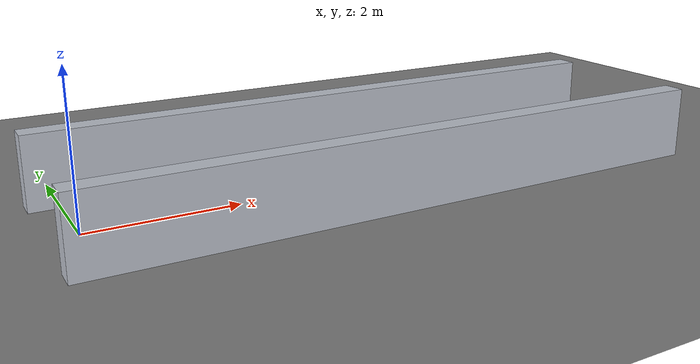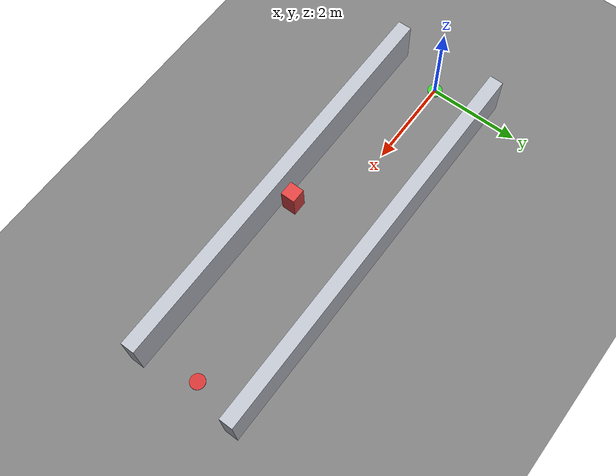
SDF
<?xml version="1.0"?>
<sdf version="1.8">
  <world name="baseline_dynamic_crossing">
    <physics name="1ms" type="ignored">
      <max_step_size>0.001</max_step_size>
      <real_time_factor>1.0</real_time_factor>
    </physics>
    <plugin filename="gz-sim-physics-system" name="gz::sim::systems::Physics"/>
    <plugin filename="gz-sim-sensors-system" name="gz::sim::systems::Sensors">
      <render_engine>ogre2</render_engine>
    </plugin>
    <plugin filename="gz-sim-user-commands-system" name="gz::sim::systems::UserCommands"/>
    <plugin filename="gz-sim-scene-broadcaster-system" name="gz::sim::systems::SceneBroadcaster"/>

    <gravity>0 0 -9.81</gravity>

    <light name="sun" type="directional">
      <cast_shadows>true</cast_shadows>
      <pose>0 0 10 0 0 0</pose>
      <diffuse>0.8 0.8 0.8 1</diffuse>
      <specular>0.2 0.2 0.2 1</specular>
      <attenuation>
        <range>1000</range>
        <constant>0.9</constant>
        <linear>0.01</linear>
        <quadratic>0.001</quadratic>
      </attenuation>
      <direction>-0.5 0.1 -0.9</direction>
    </light>

    <model name="ground_plane">
      <static>true</static>
      <link name="link">
        <collision name="collision"><geometry><plane><normal>0 0 1</normal><size>100 100</size></plane></geometry></collision>
        <visual name="visual"><geometry><plane><normal>0 0 1</normal><size>100 100</size></plane></geometry><material><ambient>0.48 0.48 0.48 1</ambient><diffuse>0.48 0.48 0.48 1</diffuse></material></visual>
      </link>
    </model>

    <model name="corridor_left">
      <static>true</static>
      <pose>4.0 1.15 0.5 0 0 0</pose>
      <link name="link">
        <collision name="collision"><geometry><box><size>8.8 0.3 1.0</size></box></geometry></collision>
        <visual name="visual"><geometry><box><size>8.8 0.3 1.0</size></box></geometry><material><ambient>0.72 0.74 0.78 1</ambient><diffuse>0.72 0.74 0.78 1</diffuse></material></visual>
      </link>
    </model>

    <model name="corridor_right">
      <static>true</static>
      <pose>4.0 -1.15 0.5 0 0 0</pose>
      <link name="link">
        <collision name="collision"><geometry><box><size>8.8 0.3 1.0</size></box></geometry></collision>
        <visual name="visual"><geometry><box><size>8.8 0.3 1.0</size></box></geometry><material><ambient>0.72 0.74 0.78 1</ambient><diffuse>0.72 0.74 0.78 1</diffuse></material></visual>
      </link>
    </model>

    <model name="dynamic_crossing_box">
      <pose>4.0 -0.8 0.30 0 0 0</pose>
      <link name="box_link">
        <inertial>
          <inertia>
            <ixx>0.02</ixx>
            <ixy>0</ixy>
            <ixz>0</ixz>
            <iyy>0.02</iyy>
            <iyz>0</iyz>
            <izz>0.02</izz>
          </inertia>
          <mass>2.0</mass>
        </inertial>
        <collision name="collision">
          <geometry><box><size>0.32 0.32 0.60</size></box></geometry>
        </collision>
        <visual name="visual">
          <geometry><box><size>0.32 0.32 0.60</size></box></geometry>
          <material>
            <ambient>0.85 0.25 0.25 1</ambient>
            <diffuse>0.85 0.25 0.25 1</diffuse>
          </material>
        </visual>
      </link>
      <plugin filename="gz-sim-velocity-control-system" name="gz::sim::systems::VelocityControl"/>
    </model>

    <model name="start_marker"><static>true</static><pose>0.0 0.0 0.01 0 0 0</pose><link name="link"><visual name="v"><geometry><cylinder><radius>0.16</radius><length>0.02</length></cylinder></geometry><material><ambient>0.2 0.8 0.2 1</ambient><diffuse>0.2 0.8 0.2 1</diffuse></material></visual></link></model>
    <model name="goal_marker"><static>true</static><pose>8.0 0.0 0.01 0 0 0</pose><link name="link"><visual name="v"><geometry><cylinder><radius>0.16</radius><length>0.02</length></cylinder></geometry><material><ambient>0.8 0.2 0.2 1</ambient><diffuse>0.8 0.2 0.2 1</diffuse></material></visual></link></model>
  </world>
</sdf>
